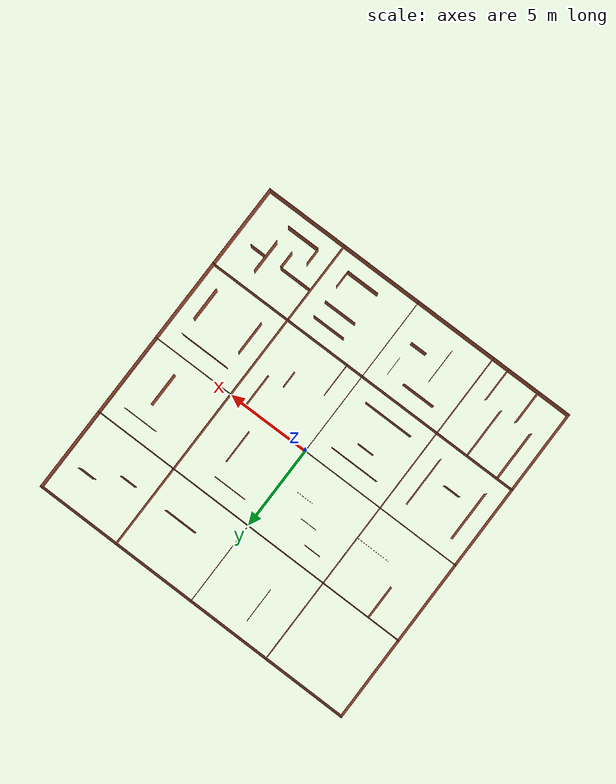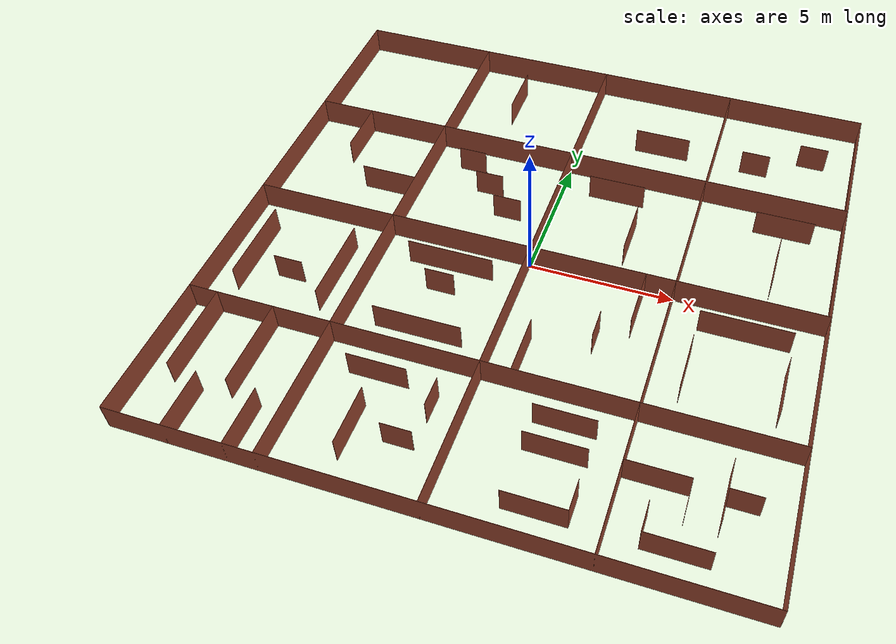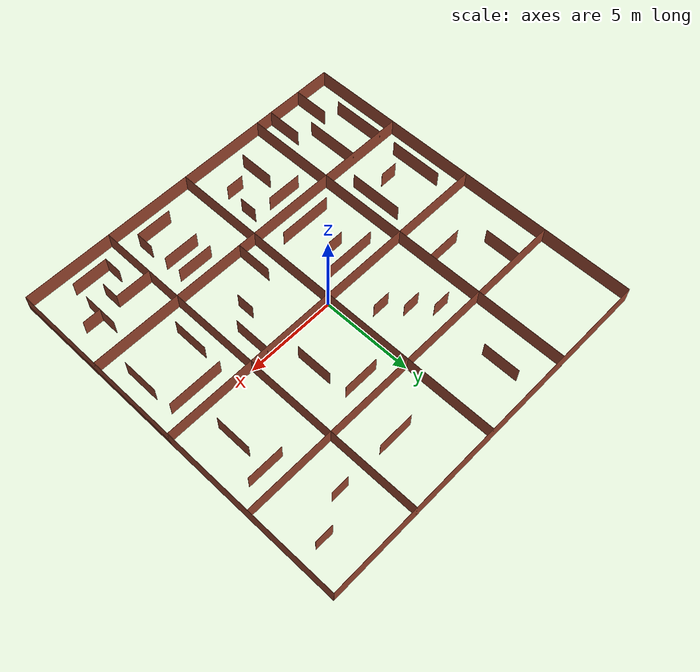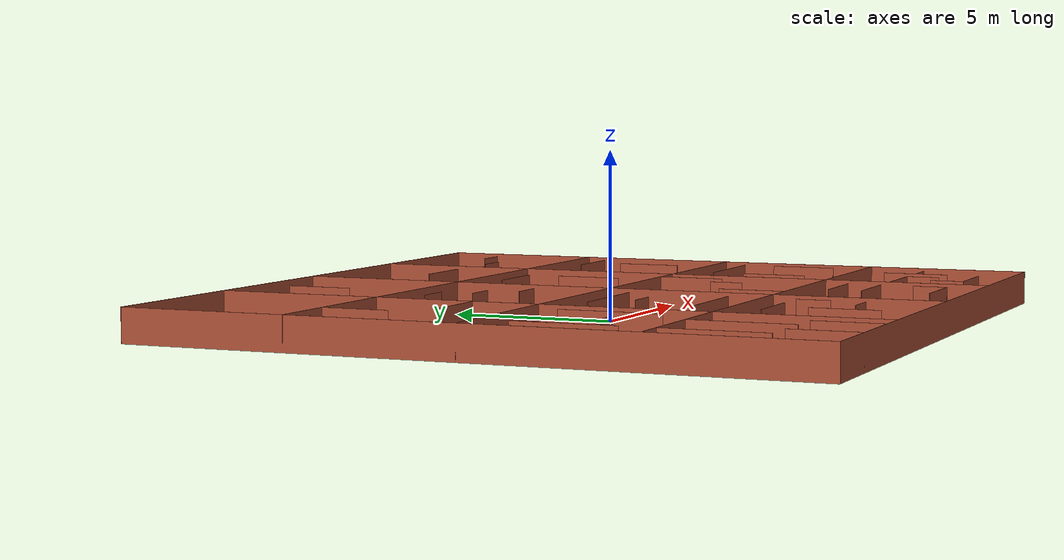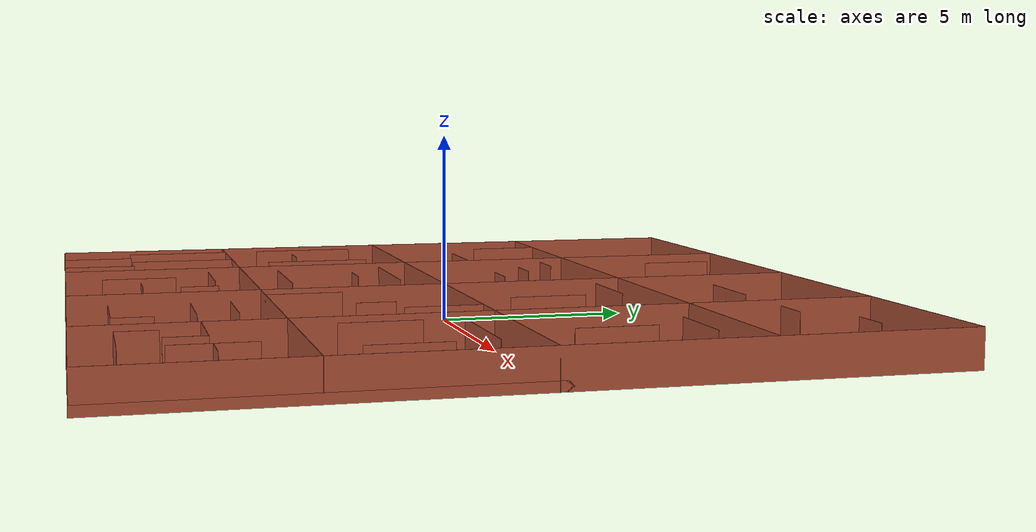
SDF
<?xml version='1.0'?>
<sdf version='1.7'>
  <model name='cur_1.0'>
    <pose>0 0 0 0 -0 0</pose>
    <link name='Wall_101'>
      <collision name='Wall_101_Collision'>
        <geometry>
          <box>
            <size>0.01 0.01 1</size>
          </box>
        </geometry>
        <pose>0 0 0.5 0 -0 0</pose>
      </collision>
      <visual name='Wall_101_Visual'>
        <pose>0 0 0.5 0 -0 0</pose>
        <geometry>
          <box>
            <size>0.01 0.01 1</size>
          </box>
        </geometry>
        <material>
          <script>
            <uri>file://media/materials/scripts/gazebo.material</uri>
            <name>Gazebo/Bricks</name>
          </script>
          <ambient>1 1 1 1</ambient>
        </material>
        <meta>
          <layer>0</layer>
        </meta>
      </visual>
      <pose>2 -9 0 0 -0 0</pose>
    </link>
    <link name='Wall_109'>
      <collision name='Wall_109_Collision'>
        <geometry>
          <box>
            <size>3.01 0.01 1</size>
          </box>
        </geometry>
        <pose>0 0 0.5 0 -0 0</pose>
      </collision>
      <visual name='Wall_109_Visual'>
        <pose>0 0 0.5 0 -0 0</pose>
        <geometry>
          <box>
            <size>3.01 0.01 1</size>
          </box>
        </geometry>
        <material>
          <script>
            <uri>file://media/materials/scripts/gazebo.material</uri>
            <name>Gazebo/Bricks</name>
          </script>
          <ambient>1 1 1 1</ambient>
        </material>
        <meta>
          <layer>0</layer>
        </meta>
      </visual>
      <pose>7.5 -1 0 0 -0 0</pose>
    </link>
    <link name='Wall_113'>
      <collision name='Wall_113_Collision'>
        <geometry>
          <box>
            <size>2.01 0.01 1</size>
          </box>
        </geometry>
        <pose>0 0 0.5 0 -0 0</pose>
      </collision>
      <visual name='Wall_113_Visual'>
        <pose>0 0 0.5 0 -0 0</pose>
        <geometry>
          <box>
            <size>2.01 0.01 1</size>
          </box>
        </geometry>
        <material>
          <script>
            <uri>file://media/materials/scripts/gazebo.material</uri>
            <name>Gazebo/Bricks</name>
          </script>
          <ambient>1 1 1 1</ambient>
        </material>
        <meta>
          <layer>0</layer>
        </meta>
      </visual>
      <pose>1 -4 0 0 -0 -1.5708</pose>
    </link>
    <link name='Wall_115'>
      <collision name='Wall_115_Collision'>
        <geometry>
          <box>
            <size>1.01 0.01 1</size>
          </box>
        </geometry>
        <pose>0 0 0.5 0 -0 0</pose>
      </collision>
      <visual name='Wall_115_Visual'>
        <pose>0 0 0.5 0 -0 0</pose>
        <geometry>
          <box>
            <size>1.01 0.01 1</size>
          </box>
        </geometry>
        <material>
          <script>
            <uri>file://media/materials/scripts/gazebo.material</uri>
            <name>Gazebo/Bricks</name>
          </script>
          <ambient>1 1 1 1</ambient>
        </material>
        <meta>
          <layer>0</layer>
        </meta>
      </visual>
      <pose>3 -2.5 0 0 -0 -1.5708</pose>
    </link>
    <link name='Wall_117'>
      <collision name='Wall_117_Collision'>
        <geometry>
          <box>
            <size>2.01 0.01 1</size>
          </box>
        </geometry>
        <pose>0 0 0.5 0 -0 0</pose>
      </collision>
      <visual name='Wall_117_Visual'>
        <pose>0 0 0.5 0 -0 0</pose>
        <geometry>
          <box>
            <size>2.01 0.01 1</size>
          </box>
        </geometry>
        <material>
          <script>
            <uri>file://media/materials/scripts/gazebo.material</uri>
            <name>Gazebo/Bricks</name>
          </script>
          <ambient>1 1 1 1</ambient>
        </material>
        <meta>
          <layer>0</layer>
        </meta>
      </visual>
      <pose>4 -1 0 0 -0 -1.5708</pose>
    </link>
    <link name='Wall_122'>
      <collision name='Wall_122_Collision'>
        <geometry>
          <box>
            <size>2.01 0.01 1</size>
          </box>
        </geometry>
        <pose>0 0 0.5 0 -0 0</pose>
      </collision>
      <visual name='Wall_122_Visual'>
        <pose>0 0 0.5 0 -0 0</pose>
        <geometry>
          <box>
            <size>2.01 0.01 1</size>
          </box>
        </geometry>
        <material>
          <script>
            <uri>file://media/materials/scripts/gazebo.material</uri>
            <name>Gazebo/Bricks</name>
          </script>
          <ambient>1 1 1 1</ambient>
        </material>
        <meta>
          <layer>0</layer>
        </meta>
      </visual>
      <pose>-8 -9 0 0 -0 -1.5708</pose>
    </link>
    <link name='Wall_125'>
      <collision name='Wall_125_Collision'>
        <geometry>
          <box>
            <size>3.01 0.01 1</size>
          </box>
        </geometry>
        <pose>0 0 0.5 0 -0 0</pose>
      </collision>
      <visual name='Wall_125_Visual'>
        <pose>0 0 0.5 0 -0 0</pose>
        <geometry>
          <box>
            <size>3.01 0.01 1</size>
          </box>
        </geometry>
        <material>
          <script>
            <uri>file://media/materials/scripts/gazebo.material</uri>
            <name>Gazebo/Bricks</name>
          </script>
          <ambient>1 1 1 1</ambient>
        </material>
        <meta>
          <layer>0</layer>
        </meta>
      </visual>
      <pose>-7 -6.5 0 0 -0 -1.5708</pose>
    </link>
    <link name='Wall_127'>
      <collision name='Wall_127_Collision'>
        <geometry>
          <box>
            <size>2.01 0.01 1</size>
          </box>
        </geometry>
        <pose>0 0 0.5 0 -0 0</pose>
      </collision>
      <visual name='Wall_127_Visual'>
        <pose>0 0 0.5 0 -0 0</pose>
        <geometry>
          <box>
            <size>2.01 0.01 1</size>
          </box>
        </geometry>
        <material>
          <script>
            <uri>file://media/materials/scripts/gazebo.material</uri>
            <name>Gazebo/Bricks</name>
          </script>
          <ambient>1 1 1 1</ambient>
        </material>
        <meta>
          <layer>0</layer>
        </meta>
      </visual>
      <pose>-6 -9 0 0 -0 -1.5708</pose>
    </link>
    <link name='Wall_13'>
      <collision name='Wall_13_Collision'>
        <geometry>
          <box>
            <size>20.01 0.01 1</size>
          </box>
        </geometry>
        <pose>0 0 0.5 0 -0 0</pose>
      </collision>
      <visual name='Wall_13_Visual'>
        <pose>0 0 0.5 0 -0 0</pose>
        <geometry>
          <box>
            <size>20.01 0.01 1</size>
          </box>
        </geometry>
        <material>
          <script>
            <uri>file://media/materials/scripts/gazebo.material</uri>
            <name>Gazebo/Bricks</name>
          </script>
          <ambient>1 1 1 1</ambient>
        </material>
        <meta>
          <layer>0</layer>
        </meta>
      </visual>
      <pose>-5 0 0 0 -0 -1.5708</pose>
    </link>
    <link name='Wall_133'>
      <collision name='Wall_133_Collision'>
        <geometry>
          <box>
            <size>3.01 0.01 1</size>
          </box>
        </geometry>
        <pose>0 0 0.5 0 -0 0</pose>
      </collision>
      <visual name='Wall_133_Visual'>
        <pose>0 0 0.5 0 -0 0</pose>
        <geometry>
          <box>
            <size>3.01 0.01 1</size>
          </box>
        </geometry>
        <material>
          <script>
            <uri>file://media/materials/scripts/gazebo.material</uri>
            <name>Gazebo/Bricks</name>
          </script>
          <ambient>1 1 1 1</ambient>
        </material>
        <meta>
          <layer>0</layer>
        </meta>
      </visual>
      <pose>-9 -2.5 0 0 -0 1.5708</pose>
    </link>
    <link name='Wall_135'>
      <collision name='Wall_135_Collision'>
        <geometry>
          <box>
            <size>1.01 0.01 1</size>
          </box>
        </geometry>
        <pose>0 0 0.5 0 -0 0</pose>
      </collision>
      <visual name='Wall_135_Visual'>
        <pose>0 0 0.5 0 -0 0</pose>
        <geometry>
          <box>
            <size>1.01 0.01 1</size>
          </box>
        </geometry>
        <material>
          <script>
            <uri>file://media/materials/scripts/gazebo.material</uri>
            <name>Gazebo/Bricks</name>
          </script>
          <ambient>1 1 1 1</ambient>
        </material>
        <meta>
          <layer>0</layer>
        </meta>
      </visual>
      <pose>-7.5 -3 0 0 -0 0</pose>
    </link>
    <link name='Wall_137'>
      <collision name='Wall_137_Collision'>
        <geometry>
          <box>
            <size>3.01 0.01 1</size>
          </box>
        </geometry>
        <pose>0 0 0.5 0 -0 0</pose>
      </collision>
      <visual name='Wall_137_Visual'>
        <pose>0 0 0.5 0 -0 0</pose>
        <geometry>
          <box>
            <size>3.01 0.01 1</size>
          </box>
        </geometry>
        <material>
          <script>
            <uri>file://media/materials/scripts/gazebo.material</uri>
            <name>Gazebo/Bricks</name>
          </script>
          <ambient>1 1 1 1</ambient>
        </material>
        <meta>
          <layer>0</layer>
        </meta>
      </visual>
      <pose>-6 -2.5 0 0 -0 -1.5708</pose>
    </link>
    <link name='Wall_139'>
      <collision name='Wall_139_Collision'>
        <geometry>
          <box>
            <size>3.01 0.01 1</size>
          </box>
        </geometry>
        <pose>0 0 0.5 0 -0 0</pose>
      </collision>
      <visual name='Wall_139_Visual'>
        <pose>0 0 0.5 0 -0 0</pose>
        <geometry>
          <box>
            <size>3.01 0.01 1</size>
          </box>
        </geometry>
        <material>
          <script>
            <uri>file://media/materials/scripts/gazebo.material</uri>
            <name>Gazebo/Bricks</name>
          </script>
          <ambient>1 1 1 1</ambient>
        </material>
        <meta>
          <layer>0</layer>
        </meta>
      </visual>
      <pose>-2.5 -1 0 0 -0 0</pose>
    </link>
    <link name='Wall_143'>
      <collision name='Wall_143_Collision'>
        <geometry>
          <box>
            <size>1.01 0.01 1</size>
          </box>
        </geometry>
        <pose>0 0 0.5 0 -0 0</pose>
      </collision>
      <visual name='Wall_143_Visual'>
        <pose>0 0 0.5 0 -0 0</pose>
        <geometry>
          <box>
            <size>1.01 0.01 1</size>
          </box>
        </geometry>
        <material>
          <script>
            <uri>file://media/materials/scripts/gazebo.material</uri>
            <name>Gazebo/Bricks</name>
          </script>
          <ambient>1 1 1 1</ambient>
        </material>
        <meta>
          <layer>0</layer>
        </meta>
      </visual>
      <pose>-2.5 -2 0 0 -0 0</pose>
    </link>
    <link name='Wall_145'>
      <collision name='Wall_145_Collision'>
        <geometry>
          <box>
            <size>3.01 0.01 1</size>
          </box>
        </geometry>
        <pose>0 0 0.5 0 -0 0</pose>
      </collision>
      <visual name='Wall_145_Visual'>
        <pose>0 0 0.5 0 -0 0</pose>
        <geometry>
          <box>
            <size>3.01 0.01 1</size>
          </box>
        </geometry>
        <material>
          <script>
            <uri>file://media/materials/scripts/gazebo.material</uri>
            <name>Gazebo/Bricks</name>
          </script>
          <ambient>1 1 1 1</ambient>
        </material>
        <meta>
          <layer>0</layer>
        </meta>
      </visual>
      <pose>-2.5 -4 0 0 -0 0</pose>
    </link>
    <link name='Wall_147'>
      <collision name='Wall_147_Collision'>
        <geometry>
          <box>
            <size>2.01 0.01 1</size>
          </box>
        </geometry>
        <pose>0 0 0.5 0 -0 0</pose>
      </collision>
      <visual name='Wall_147_Visual'>
        <pose>0 0 0.5 0 -0 0</pose>
        <geometry>
          <box>
            <size>2.01 0.01 1</size>
          </box>
        </geometry>
        <material>
          <script>
            <uri>file://media/materials/scripts/gazebo.material</uri>
            <name>Gazebo/Bricks</name>
          </script>
          <ambient>1 1 1 1</ambient>
        </material>
        <meta>
          <layer>0</layer>
        </meta>
      </visual>
      <pose>6 -3 0 0 -0 -1.5708</pose>
    </link>
    <link name='Wall_149'>
      <collision name='Wall_149_Collision'>
        <geometry>
          <box>
            <size>2.01 0.01 1</size>
          </box>
        </geometry>
        <pose>0 0 0.5 0 -0 0</pose>
      </collision>
      <visual name='Wall_149_Visual'>
        <pose>0 0 0.5 0 -0 0</pose>
        <geometry>
          <box>
            <size>2.01 0.01 1</size>
          </box>
        </geometry>
        <material>
          <script>
            <uri>file://media/materials/scripts/gazebo.material</uri>
            <name>Gazebo/Bricks</name>
          </script>
          <ambient>1 1 1 1</ambient>
        </material>
        <meta>
          <layer>0</layer>
        </meta>
      </visual>
      <pose>9 -3 0 0 -0 -1.5708</pose>
    </link>
    <link name='Wall_15'>
      <collision name='Wall_15_Collision'>
        <geometry>
          <box>
            <size>20.01 0.01 1</size>
          </box>
        </geometry>
        <pose>0 0 0.5 0 -0 0</pose>
      </collision>
      <visual name='Wall_15_Visual'>
        <pose>0 0 0.5 0 -0 0</pose>
        <geometry>
          <box>
            <size>20.01 0.01 1</size>
          </box>
        </geometry>
        <material>
          <script>
            <uri>file://media/materials/scripts/gazebo.material</uri>
            <name>Gazebo/Bricks</name>
          </script>
          <ambient>1 1 1 1</ambient>
        </material>
        <meta>
          <layer>0</layer>
        </meta>
      </visual>
      <pose>0 0 0 0 -0 -1.5708</pose>
    </link>
    <link name='Wall_151'>
      <collision name='Wall_151_Collision'>
        <geometry>
          <box>
            <size>2.01 0.01 1</size>
          </box>
        </geometry>
        <pose>0 0 0.5 0 -0 0</pose>
      </collision>
      <visual name='Wall_151_Visual'>
        <pose>0 0 0.5 0 -0 0</pose>
        <geometry>
          <box>
            <size>2.01 0.01 1</size>
          </box>
        </geometry>
        <material>
          <script>
            <uri>file://media/materials/scripts/gazebo.material</uri>
            <name>Gazebo/Bricks</name>
          </script>
          <ambient>1 1 1 1</ambient>
        </material>
        <meta>
          <layer>0</layer>
        </meta>
      </visual>
      <pose>8 2 0 0 -0 1.5708</pose>
    </link>
    <link name='Wall_157'>
      <collision name='Wall_157_Collision'>
        <geometry>
          <box>
            <size>2.01 0.01 1</size>
          </box>
        </geometry>
        <pose>0 0 0.5 0 -0 0</pose>
      </collision>
      <visual name='Wall_157_Visual'>
        <pose>0 0 0.5 0 -0 0</pose>
        <geometry>
          <box>
            <size>2.01 0.01 1</size>
          </box>
        </geometry>
        <material>
          <script>
            <uri>file://media/materials/scripts/gazebo.material</uri>
            <name>Gazebo/Bricks</name>
          </script>
          <ambient>1 1 1 1</ambient>
        </material>
        <meta>
          <layer>0</layer>
        </meta>
      </visual>
      <pose>3 7 0 0 -0 0</pose>
    </link>
    <link name='Wall_159'>
      <collision name='Wall_159_Collision'>
        <geometry>
          <box>
            <size>2.01 0.01 1</size>
          </box>
        </geometry>
        <pose>0 0 0.5 0 -0 0</pose>
      </collision>
      <visual name='Wall_159_Visual'>
        <pose>0 0 0.5 0 -0 0</pose>
        <geometry>
          <box>
            <size>2.01 0.01 1</size>
          </box>
        </geometry>
        <material>
          <script>
            <uri>file://media/materials/scripts/gazebo.material</uri>
            <name>Gazebo/Bricks</name>
          </script>
          <ambient>1 1 1 1</ambient>
        </material>
        <meta>
          <layer>0</layer>
        </meta>
      </visual>
      <pose>2 4 0 0 -0 0</pose>
    </link>
    <link name='Wall_162'>
      <collision name='Wall_162_Collision'>
        <geometry>
          <box>
            <size>2.01 0.01 1</size>
          </box>
        </geometry>
        <pose>0 0 0.5 0 -0 0</pose>
      </collision>
      <visual name='Wall_162_Visual'>
        <pose>0 0 0.5 0 -0 0</pose>
        <geometry>
          <box>
            <size>2.01 0.01 1</size>
          </box>
        </geometry>
        <material>
          <script>
            <uri>file://media/materials/scripts/gazebo.material</uri>
            <name>Gazebo/Bricks</name>
          </script>
          <ambient>1 1 1 1</ambient>
        </material>
        <meta>
          <layer>0</layer>
        </meta>
      </visual>
      <pose>-8 4 0 0 -0 -1.5708</pose>
    </link>
    <link name='Wall_165'>
      <collision name='Wall_165_Collision'>
        <geometry>
          <box>
            <size>2.01 0.01 1</size>
          </box>
        </geometry>
        <pose>0 0 0.5 0 -0 0</pose>
      </collision>
      <visual name='Wall_165_Visual'>
        <pose>0 0 0.5 0 -0 0</pose>
        <geometry>
          <box>
            <size>2.01 0.01 1</size>
          </box>
        </geometry>
        <material>
          <script>
            <uri>file://media/materials/scripts/gazebo.material</uri>
            <name>Gazebo/Bricks</name>
          </script>
          <ambient>1 1 1 1</ambient>
        </material>
        <meta>
          <layer>0</layer>
        </meta>
      </visual>
      <pose>-6 2 0 0 -0 0</pose>
    </link>
    <link name='Wall_169'>
      <collision name='Wall_169_Collision'>
        <geometry>
          <box>
            <size>1.01 0.01 1</size>
          </box>
        </geometry>
        <pose>0 0 0.5 0 -0 0</pose>
      </collision>
      <visual name='Wall_169_Visual'>
        <pose>0 0 0.5 0 -0 0</pose>
        <geometry>
          <box>
            <size>1.01 0.01 1</size>
          </box>
        </geometry>
        <material>
          <script>
            <uri>file://media/materials/scripts/gazebo.material</uri>
            <name>Gazebo/Bricks</name>
          </script>
          <ambient>1 1 1 1</ambient>
        </material>
        <meta>
          <layer>0</layer>
        </meta>
      </visual>
      <pose>-3.5 4 0 0 -0 0</pose>
    </link>
    <link name='Wall_17'>
      <collision name='Wall_17_Collision'>
        <geometry>
          <box>
            <size>20.01 0.01 1</size>
          </box>
        </geometry>
        <pose>0 0 0.5 0 -0 0</pose>
      </collision>
      <visual name='Wall_17_Visual'>
        <pose>0 0 0.5 0 -0 0</pose>
        <geometry>
          <box>
            <size>20.01 0.01 1</size>
          </box>
        </geometry>
        <material>
          <script>
            <uri>file://media/materials/scripts/gazebo.material</uri>
            <name>Gazebo/Bricks</name>
          </script>
          <ambient>1 1 1 1</ambient>
        </material>
        <meta>
          <layer>0</layer>
        </meta>
      </visual>
      <pose>5 0 0 0 -0 -1.5708</pose>
    </link>
    <link name='Wall_173'>
      <collision name='Wall_173_Collision'>
        <geometry>
          <box>
            <size>1.01 0.01 1</size>
          </box>
        </geometry>
        <pose>0 0 0.5 0 -0 0</pose>
      </collision>
      <visual name='Wall_173_Visual'>
        <pose>0 0 0.5 0 -0 0</pose>
        <geometry>
          <box>
            <size>1.01 0.01 1</size>
          </box>
        </geometry>
        <material>
          <script>
            <uri>file://media/materials/scripts/gazebo.material</uri>
            <name>Gazebo/Bricks</name>
          </script>
          <ambient>1 1 1 1</ambient>
        </material>
        <meta>
          <layer>0</layer>
        </meta>
      </visual>
      <pose>8.5 8 0 0 -0 0</pose>
    </link>
    <link name='Wall_175'>
      <collision name='Wall_175_Collision'>
        <geometry>
          <box>
            <size>1.01 0.01 1</size>
          </box>
        </geometry>
        <pose>0 0 0.5 0 -0 0</pose>
      </collision>
      <visual name='Wall_175_Visual'>
        <pose>0 0 0.5 0 -0 0</pose>
        <geometry>
          <box>
            <size>1.01 0.01 1</size>
          </box>
        </geometry>
        <material>
          <script>
            <uri>file://media/materials/scripts/gazebo.material</uri>
            <name>Gazebo/Bricks</name>
          </script>
          <ambient>1 1 1 1</ambient>
        </material>
        <meta>
          <layer>0</layer>
        </meta>
      </visual>
      <pose>-2.5 3 0 0 -0 0</pose>
    </link>
    <link name='Wall_177'>
      <collision name='Wall_177_Collision'>
        <geometry>
          <box>
            <size>1.01 0.01 1</size>
          </box>
        </geometry>
        <pose>0 0 0.5 0 -0 0</pose>
      </collision>
      <visual name='Wall_177_Visual'>
        <pose>0 0 0.5 0 -0 0</pose>
        <geometry>
          <box>
            <size>1.01 0.01 1</size>
          </box>
        </geometry>
        <material>
          <script>
            <uri>file://media/materials/scripts/gazebo.material</uri>
            <name>Gazebo/Bricks</name>
          </script>
          <ambient>1 1 1 1</ambient>
        </material>
        <meta>
          <layer>0</layer>
        </meta>
      </visual>
      <pose>-1.5 2 0 0 -0 0</pose>
    </link>
    <link name='Wall_179'>
      <collision name='Wall_179_Collision'>
        <geometry>
          <box>
            <size>2.01 0.01 1</size>
          </box>
        </geometry>
        <pose>0 0 0.5 0 -0 0</pose>
      </collision>
      <visual name='Wall_179_Visual'>
        <pose>0 0 0.5 0 -0 0</pose>
        <geometry>
          <box>
            <size>2.01 0.01 1</size>
          </box>
        </geometry>
        <material>
          <script>
            <uri>file://media/materials/scripts/gazebo.material</uri>
            <name>Gazebo/Bricks</name>
          </script>
          <ambient>1 1 1 1</ambient>
        </material>
        <meta>
          <layer>0</layer>
        </meta>
      </visual>
      <pose>3 2 0 0 -0 1.5708</pose>
    </link>
    <link name='Wall_185'>
      <collision name='Wall_185_Collision'>
        <geometry>
          <box>
            <size>2.01 0.01 1</size>
          </box>
        </geometry>
        <pose>0 0 0.5 0 -0 0</pose>
      </collision>
      <visual name='Wall_185_Visual'>
        <pose>0 0 0.5 0 -0 0</pose>
        <geometry>
          <box>
            <size>2.01 0.01 1</size>
          </box>
        </geometry>
        <material>
          <script>
            <uri>file://media/materials/scripts/gazebo.material</uri>
            <name>Gazebo/Bricks</name>
          </script>
          <ambient>1 1 1 1</ambient>
        </material>
        <meta>
          <layer>0</layer>
        </meta>
      </visual>
      <pose>3 -6 0 0 -0 0</pose>
    </link>
    <link name='Wall_187'>
      <collision name='Wall_187_Collision'>
        <geometry>
          <box>
            <size>2.01 0.01 1</size>
          </box>
        </geometry>
        <pose>0 0 0.5 0 -0 0</pose>
      </collision>
      <visual name='Wall_187_Visual'>
        <pose>0 0 0.5 0 -0 0</pose>
        <geometry>
          <box>
            <size>2.01 0.01 1</size>
          </box>
        </geometry>
        <material>
          <script>
            <uri>file://media/materials/scripts/gazebo.material</uri>
            <name>Gazebo/Bricks</name>
          </script>
          <ambient>1 1 1 1</ambient>
        </material>
        <meta>
          <layer>0</layer>
        </meta>
      </visual>
      <pose>3 -9 0 0 -0 0</pose>
    </link>
    <link name='Wall_24'>
      <collision name='Wall_24_Collision'>
        <geometry>
          <box>
            <size>20.01 0.01 1</size>
          </box>
        </geometry>
        <pose>0 0 0.5 0 -0 0</pose>
      </collision>
      <visual name='Wall_24_Visual'>
        <pose>0 0 0.5 0 -0 0</pose>
        <geometry>
          <box>
            <size>20.01 0.01 1</size>
          </box>
        </geometry>
        <material>
          <script>
            <uri>file://media/materials/scripts/gazebo.material</uri>
            <name>Gazebo/Bricks</name>
          </script>
          <ambient>1 1 1 1</ambient>
        </material>
        <meta>
          <layer>0</layer>
        </meta>
      </visual>
      <pose>0 10 0 0 -0 0</pose>
    </link>
    <link name='Wall_33'>
      <collision name='Wall_33_Collision'>
        <geometry>
          <box>
            <size>20.01 0.01 1</size>
          </box>
        </geometry>
        <pose>0 0 0.5 0 -0 0</pose>
      </collision>
      <visual name='Wall_33_Visual'>
        <pose>0 0 0.5 0 -0 0</pose>
        <geometry>
          <box>
            <size>20.01 0.01 1</size>
          </box>
        </geometry>
        <material>
          <script>
            <uri>file://media/materials/scripts/gazebo.material</uri>
            <name>Gazebo/Bricks</name>
          </script>
          <ambient>1 1 1 1</ambient>
        </material>
        <meta>
          <layer>0</layer>
        </meta>
      </visual>
      <pose>0 5 0 0 -0 3.14159</pose>
    </link>
    <link name='Wall_35'>
      <collision name='Wall_35_Collision'>
        <geometry>
          <box>
            <size>20.01 0.01 1</size>
          </box>
        </geometry>
        <pose>0 0 0.5 0 -0 0</pose>
      </collision>
      <visual name='Wall_35_Visual'>
        <pose>0 0 0.5 0 -0 0</pose>
        <geometry>
          <box>
            <size>20.01 0.01 1</size>
          </box>
        </geometry>
        <material>
          <script>
            <uri>file://media/materials/scripts/gazebo.material</uri>
            <name>Gazebo/Bricks</name>
          </script>
          <ambient>1 1 1 1</ambient>
        </material>
        <meta>
          <layer>0</layer>
        </meta>
      </visual>
      <pose>0 0 0 0 -0 3.14159</pose>
    </link>
    <link name='Wall_37'>
      <collision name='Wall_37_Collision'>
        <geometry>
          <box>
            <size>20.01 0.01 1</size>
          </box>
        </geometry>
        <pose>0 0 0.5 0 -0 0</pose>
      </collision>
      <visual name='Wall_37_Visual'>
        <pose>0 0 0.5 0 -0 0</pose>
        <geometry>
          <box>
            <size>20.01 0.01 1</size>
          </box>
        </geometry>
        <material>
          <script>
            <uri>file://media/materials/scripts/gazebo.material</uri>
            <name>Gazebo/Bricks</name>
          </script>
          <ambient>1 1 1 1</ambient>
        </material>
        <meta>
          <layer>0</layer>
        </meta>
      </visual>
      <pose>0 -5 0 0 -0 0</pose>
    </link>
    <link name='Wall_45'>
      <collision name='Wall_45_Collision'>
        <geometry>
          <box>
            <size>2.01 0.01 1</size>
          </box>
        </geometry>
        <pose>0 0 0.5 0 -0 0</pose>
      </collision>
      <visual name='Wall_45_Visual'>
        <pose>0 0 0.5 0 -0 0</pose>
        <geometry>
          <box>
            <size>2.01 0.01 1</size>
          </box>
        </geometry>
        <material>
          <script>
            <uri>file://media/materials/scripts/gazebo.material</uri>
            <name>Gazebo/Bricks</name>
          </script>
          <ambient>1 1 1 1</ambient>
        </material>
        <meta>
          <layer>0</layer>
        </meta>
      </visual>
      <pose>8 4 0 0 -0 0</pose>
    </link>
    <link name='Wall_6'>
      <collision name='Wall_6_Collision'>
        <geometry>
          <box>
            <size>20.01 0.01 1</size>
          </box>
        </geometry>
        <pose>0 0 0.5 0 -0 0</pose>
      </collision>
      <visual name='Wall_6_Visual'>
        <pose>0 0 0.5 0 -0 0</pose>
        <geometry>
          <box>
            <size>20.01 0.01 1</size>
          </box>
        </geometry>
        <material>
          <script>
            <uri>file://media/materials/scripts/gazebo.material</uri>
            <name>Gazebo/Bricks</name>
          </script>
          <ambient>1 1 1 1</ambient>
        </material>
        <meta>
          <layer>0</layer>
        </meta>
      </visual>
      <pose>-10 0 0 0 -0 -1.5708</pose>
    </link>
    <link name='Wall_63'>
      <collision name='Wall_63_Collision'>
        <geometry>
          <box>
            <size>2.01 0.01 1</size>
          </box>
        </geometry>
        <pose>0 0 0.5 0 -0 0</pose>
      </collision>
      <visual name='Wall_63_Visual'>
        <pose>0 0 0.5 0 -0 0</pose>
        <geometry>
          <box>
            <size>2.01 0.01 1</size>
          </box>
        </geometry>
        <material>
          <script>
            <uri>file://media/materials/scripts/gazebo.material</uri>
            <name>Gazebo/Bricks</name>
          </script>
          <ambient>1 1 1 1</ambient>
        </material>
        <meta>
          <layer>0</layer>
        </meta>
      </visual>
      <pose>-3 8 0 0 -0 1.5708</pose>
    </link>
    <link name='Wall_67'>
      <collision name='Wall_67_Collision'>
        <geometry>
          <box>
            <size>1.01 0.01 1</size>
          </box>
        </geometry>
        <pose>0 0 0.5 0 -0 0</pose>
      </collision>
      <visual name='Wall_67_Visual'>
        <pose>0 0 0.5 0 -0 0</pose>
        <geometry>
          <box>
            <size>1.01 0.01 1</size>
          </box>
        </geometry>
        <material>
          <script>
            <uri>file://media/materials/scripts/gazebo.material</uri>
            <name>Gazebo/Bricks</name>
          </script>
          <ambient>1 1 1 1</ambient>
        </material>
        <meta>
          <layer>0</layer>
        </meta>
      </visual>
      <pose>6.5 7 0 0 -0 0</pose>
    </link>
    <link name='Wall_69'>
      <collision name='Wall_69_Collision'>
        <geometry>
          <box>
            <size>3.01 0.01 1</size>
          </box>
        </geometry>
        <pose>0 0 0.5 0 -0 0</pose>
      </collision>
      <visual name='Wall_69_Visual'>
        <pose>0 0 0.5 0 -0 0</pose>
        <geometry>
          <box>
            <size>3.01 0.01 1</size>
          </box>
        </geometry>
        <material>
          <script>
            <uri>file://media/materials/scripts/gazebo.material</uri>
            <name>Gazebo/Bricks</name>
          </script>
          <ambient>1 1 1 1</ambient>
        </material>
        <meta>
          <layer>0</layer>
        </meta>
      </visual>
      <pose>-9 -6.5 0 0 -0 -1.5708</pose>
    </link>
    <link name='Wall_7'>
      <collision name='Wall_7_Collision'>
        <geometry>
          <box>
            <size>20.01 0.01 1</size>
          </box>
        </geometry>
        <pose>0 0 0.5 0 -0 0</pose>
      </collision>
      <visual name='Wall_7_Visual'>
        <pose>0 0 0.5 0 -0 0</pose>
        <geometry>
          <box>
            <size>20.01 0.01 1</size>
          </box>
        </geometry>
        <material>
          <script>
            <uri>file://media/materials/scripts/gazebo.material</uri>
            <name>Gazebo/Bricks</name>
          </script>
          <ambient>1 1 1 1</ambient>
        </material>
        <meta>
          <layer>0</layer>
        </meta>
      </visual>
      <pose>0 -10 0 0 -0 0</pose>
    </link>
    <link name='Wall_73'>
      <collision name='Wall_73_Collision'>
        <geometry>
          <box>
            <size>2.01 0.01 1</size>
          </box>
        </geometry>
        <pose>0 0 0.5 0 -0 0</pose>
      </collision>
      <visual name='Wall_73_Visual'>
        <pose>0 0 0.5 0 -0 0</pose>
        <geometry>
          <box>
            <size>2.01 0.01 1</size>
          </box>
        </geometry>
        <material>
          <script>
            <uri>file://media/materials/scripts/gazebo.material</uri>
            <name>Gazebo/Bricks</name>
          </script>
          <ambient>1 1 1 1</ambient>
        </material>
        <meta>
          <layer>0</layer>
        </meta>
      </visual>
      <pose>-3 -6 0 0 -0 0</pose>
    </link>
    <link name='Wall_75'>
      <collision name='Wall_75_Collision'>
        <geometry>
          <box>
            <size>2.01 0.01 1</size>
          </box>
        </geometry>
        <pose>0 0 0.5 0 -0 0</pose>
      </collision>
      <visual name='Wall_75_Visual'>
        <pose>0 0 0.5 0 -0 0</pose>
        <geometry>
          <box>
            <size>2.01 0.01 1</size>
          </box>
        </geometry>
        <material>
          <script>
            <uri>file://media/materials/scripts/gazebo.material</uri>
            <name>Gazebo/Bricks</name>
          </script>
          <ambient>1 1 1 1</ambient>
        </material>
        <meta>
          <layer>0</layer>
        </meta>
      </visual>
      <pose>-3 -8 0 0 -0 -1.5708</pose>
    </link>
    <link name='Wall_77'>
      <collision name='Wall_77_Collision'>
        <geometry>
          <box>
            <size>1.01 0.01 1</size>
          </box>
        </geometry>
        <pose>0 0 0.5 0 -0 0</pose>
      </collision>
      <visual name='Wall_77_Visual'>
        <pose>0 0 0.5 0 -0 0</pose>
        <geometry>
          <box>
            <size>1.01 0.01 1</size>
          </box>
        </geometry>
        <material>
          <script>
            <uri>file://media/materials/scripts/gazebo.material</uri>
            <name>Gazebo/Bricks</name>
          </script>
          <ambient>1 1 1 1</ambient>
        </material>
        <meta>
          <layer>0</layer>
        </meta>
      </visual>
      <pose>-1.5 -8 0 0 -0 0</pose>
    </link>
    <link name='Wall_79'>
      <collision name='Wall_79_Collision'>
        <geometry>
          <box>
            <size>1.01 0.01 1</size>
          </box>
        </geometry>
        <pose>0 0 0.5 0 -0 0</pose>
      </collision>
      <visual name='Wall_79_Visual'>
        <pose>0 0 0.5 0 -0 0</pose>
        <geometry>
          <box>
            <size>1.01 0.01 1</size>
          </box>
        </geometry>
        <material>
          <script>
            <uri>file://media/materials/scripts/gazebo.material</uri>
            <name>Gazebo/Bricks</name>
          </script>
          <ambient>1 1 1 1</ambient>
        </material>
        <meta>
          <layer>0</layer>
        </meta>
      </visual>
      <pose>-1 -6.5 0 0 -0 -1.5708</pose>
    </link>
    <link name='Wall_8'>
      <collision name='Wall_8_Collision'>
        <geometry>
          <box>
            <size>20.01 0.01 0.25</size>
          </box>
        </geometry>
        <pose>0 0 0.125 0 -0 0</pose>
      </collision>
      <visual name='Wall_8_Visual'>
        <pose>0 0 0.125 0 -0 0</pose>
        <geometry>
          <box>
            <size>20.01 0.01 0.25</size>
          </box>
        </geometry>
        <material>
          <script>
            <uri>file://media/materials/scripts/gazebo.material</uri>
            <name>Gazebo/Bricks</name>
          </script>
          <ambient>1 1 1 1</ambient>
        </material>
        <meta>
          <layer>0</layer>
        </meta>
      </visual>
      <pose>10 0 0 0 -0 1.5708</pose>
    </link>
    <link name='Wall_82'>
      <collision name='Wall_82_Collision'>
        <geometry>
          <box>
            <size>0.01 0.01 1</size>
          </box>
        </geometry>
        <pose>0 0 0.5 0 -0 0</pose>
      </collision>
      <visual name='Wall_82_Visual'>
        <pose>0 0 0.5 0 -0 0</pose>
        <geometry>
          <box>
            <size>0.01 0.01 1</size>
          </box>
        </geometry>
        <material>
          <script>
            <uri>file://media/materials/scripts/gazebo.material</uri>
            <name>Gazebo/Bricks</name>
          </script>
          <ambient>1 1 1 1</ambient>
        </material>
        <meta>
          <layer>0</layer>
        </meta>
      </visual>
      <pose>2 -6 0 0 -0 0</pose>
    </link>
    <link name='Wall_85'>
      <collision name='Wall_85_Collision'>
        <geometry>
          <box>
            <size>1.01 0.01 1</size>
          </box>
        </geometry>
        <pose>0 0 0.5 0 -0 0</pose>
      </collision>
      <visual name='Wall_85_Visual'>
        <pose>0 0 0.5 0 -0 0</pose>
        <geometry>
          <box>
            <size>1.01 0.01 1</size>
          </box>
        </geometry>
        <material>
          <script>
            <uri>file://media/materials/scripts/gazebo.material</uri>
            <name>Gazebo/Bricks</name>
          </script>
          <ambient>1 1 1 1</ambient>
        </material>
        <meta>
          <layer>0</layer>
        </meta>
      </visual>
      <pose>4 -8.5 0 0 -0 1.5708</pose>
    </link>
    <link name='Wall_87'>
      <collision name='Wall_87_Collision'>
        <geometry>
          <box>
            <size>2.01 0.01 1</size>
          </box>
        </geometry>
        <pose>0 0 0.5 0 -0 0</pose>
      </collision>
      <visual name='Wall_87_Visual'>
        <pose>0 0 0.5 0 -0 0</pose>
        <geometry>
          <box>
            <size>2.01 0.01 1</size>
          </box>
        </geometry>
        <material>
          <script>
            <uri>file://media/materials/scripts/gazebo.material</uri>
            <name>Gazebo/Bricks</name>
          </script>
          <ambient>1 1 1 1</ambient>
        </material>
        <meta>
          <layer>0</layer>
        </meta>
      </visual>
      <pose>6 -7 0 0 -0 0</pose>
    </link>
    <link name='Wall_9'>
      <collision name='Wall_9_Collision'>
        <geometry>
          <box>
            <size>20.01 0.01 1</size>
          </box>
        </geometry>
        <pose>0 0 0.5 0 -0 0</pose>
      </collision>
      <visual name='Wall_9_Visual'>
        <pose>0 0 0.5 0 -0 0</pose>
        <geometry>
          <box>
            <size>20.01 0.01 1</size>
          </box>
        </geometry>
        <material>
          <script>
            <uri>file://media/materials/scripts/gazebo.material</uri>
            <name>Gazebo/Bricks</name>
          </script>
          <ambient>1 1 1 1</ambient>
        </material>
        <meta>
          <layer>0</layer>
        </meta>
      </visual>
      <pose>10 0 0 0 -0 -1.5708</pose>
    </link>
    <link name='Wall_90'>
      <collision name='Wall_90_Collision'>
        <geometry>
          <box>
            <size>1.01 0.01 1</size>
          </box>
        </geometry>
        <pose>0 0 0.5 0 -0 0</pose>
      </collision>
      <visual name='Wall_90_Visual'>
        <pose>0 0 0.5 0 -0 0</pose>
        <geometry>
          <box>
            <size>1.01 0.01 1</size>
          </box>
        </geometry>
        <material>
          <script>
            <uri>file://media/materials/scripts/gazebo.material</uri>
            <name>Gazebo/Bricks</name>
          </script>
          <ambient>1 1 1 1</ambient>
        </material>
        <meta>
          <layer>0</layer>
        </meta>
      </visual>
      <pose>7 -7.5 0 0 -0 -1.5708</pose>
    </link>
    <link name='Wall_92'>
      <collision name='Wall_92_Collision'>
        <geometry>
          <box>
            <size>1.01 0.01 1</size>
          </box>
        </geometry>
        <pose>0 0 0.5 0 -0 0</pose>
      </collision>
      <visual name='Wall_92_Visual'>
        <pose>0 0 0.5 0 -0 0</pose>
        <geometry>
          <box>
            <size>1.01 0.01 1</size>
          </box>
        </geometry>
        <material>
          <script>
            <uri>file://media/materials/scripts/gazebo.material</uri>
            <name>Gazebo/Bricks</name>
          </script>
          <ambient>1 1 1 1</ambient>
        </material>
        <meta>
          <layer>0</layer>
        </meta>
      </visual>
      <pose>6 -8.5 0 0 -0 -1.5708</pose>
    </link>
    <link name='Wall_93'>
      <collision name='Wall_93_Collision'>
        <geometry>
          <box>
            <size>2.01 0.01 1</size>
          </box>
        </geometry>
        <pose>0 0 0.5 0 -0 0</pose>
      </collision>
      <visual name='Wall_93_Visual'>
        <pose>0 0 0.5 0 -0 0</pose>
        <geometry>
          <box>
            <size>2.01 0.01 1</size>
          </box>
        </geometry>
        <material>
          <script>
            <uri>file://media/materials/scripts/gazebo.material</uri>
            <name>Gazebo/Bricks</name>
          </script>
          <ambient>1 1 1 1</ambient>
        </material>
        <meta>
          <layer>0</layer>
        </meta>
      </visual>
      <pose>7 -9 0 0 -0 0</pose>
    </link>
    <link name='Wall_95'>
      <collision name='Wall_95_Collision'>
        <geometry>
          <box>
            <size>2.01 0.01 1</size>
          </box>
        </geometry>
        <pose>0 0 0.5 0 -0 0</pose>
      </collision>
      <visual name='Wall_95_Visual'>
        <pose>0 0 0.5 0 -0 0</pose>
        <geometry>
          <box>
            <size>2.01 0.01 1</size>
          </box>
        </geometry>
        <material>
          <script>
            <uri>file://media/materials/scripts/gazebo.material</uri>
            <name>Gazebo/Bricks</name>
          </script>
          <ambient>1 1 1 1</ambient>
        </material>
        <meta>
          <layer>0</layer>
        </meta>
      </visual>
      <pose>8 -7 0 0 -0 -1.5708</pose>
    </link>
    <link name='Wall_97'>
      <collision name='Wall_97_Collision'>
        <geometry>
          <box>
            <size>1.01 0.01 1</size>
          </box>
        </geometry>
        <pose>0 0 0.5 0 -0 0</pose>
      </collision>
      <visual name='Wall_97_Visual'>
        <pose>0 0 0.5 0 -0 0</pose>
        <geometry>
          <box>
            <size>1.01 0.01 1</size>
          </box>
        </geometry>
        <material>
          <script>
            <uri>file://media/materials/scripts/gazebo.material</uri>
            <name>Gazebo/Bricks</name>
          </script>
          <ambient>1 1 1 1</ambient>
        </material>
        <meta>
          <layer>0</layer>
        </meta>
      </visual>
      <pose>8.5 -7 0 0 -0 0</pose>
    </link>
    <link name='Wall_99'>
      <collision name='Wall_99_Collision'>
        <geometry>
          <box>
            <size>2.01 0.01 1</size>
          </box>
        </geometry>
        <pose>0 0 0.5 0 -0 0</pose>
      </collision>
      <visual name='Wall_99_Visual'>
        <pose>0 0 0.5 0 -0 0</pose>
        <geometry>
          <box>
            <size>2.01 0.01 1</size>
          </box>
        </geometry>
        <material>
          <script>
            <uri>file://media/materials/scripts/gazebo.material</uri>
            <name>Gazebo/Bricks</name>
          </script>
          <ambient>1 1 1 1</ambient>
        </material>
        <meta>
          <layer>0</layer>
        </meta>
      </visual>
      <pose>3 -7 0 0 -0 0</pose>
    </link>
    <static>1</static>
  </model>
</sdf>
